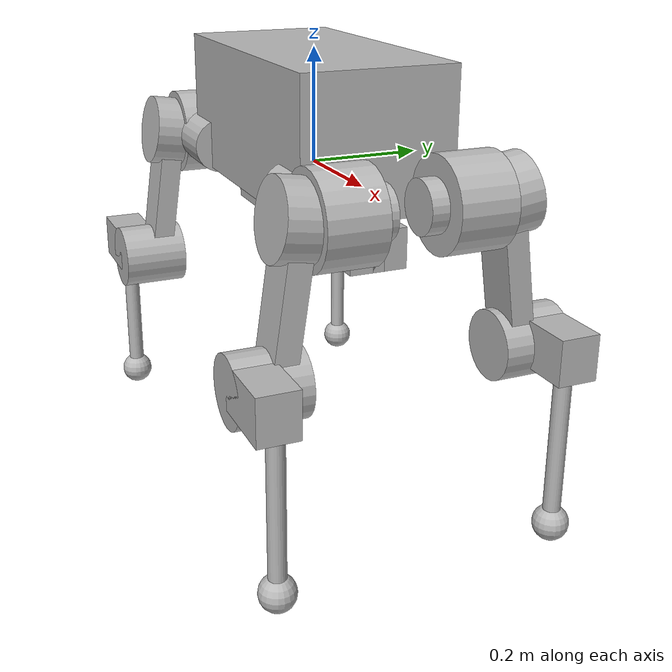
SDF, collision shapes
<sdf version='1.7'>
  <model name='anymal'>
    <link name='base'>
      <inertial>
        <pose>-0.001961 -0.001413 0.050207 0 -0 0</pose>
        <mass>16.7935</mass>
        <inertia>
          <ixx>0.217391</ixx>
          <ixy>-0.00132873</ixy>
          <ixz>-0.002282</ixz>
          <iyy>0.639433</iyy>
          <iyz>-0.00138078</iyz>
          <izz>0.624141</izz>
        </inertia>
      </inertial>
      <collision name='base_collision'>
        <pose>0 0 0.08 0 -0 0</pose>
        <geometry>
          <box>
            <size>0.531 0.27 0.24</size>
          </box>
        </geometry>
      </collision>
      <collision name='base_collision_1'>
        <pose>0.227 0.116 0 0 1.5708 0</pose>
        <geometry>
          <cylinder>
            <length>0.1</length>
            <radius>0.05</radius>
          </cylinder>
        </geometry>
      </collision>
      <collision name='base_collision_2'>
        <pose>0.227 -0.116 0 0 1.5708 0</pose>
        <geometry>
          <cylinder>
            <length>0.1</length>
            <radius>0.05</radius>
          </cylinder>
        </geometry>
      </collision>
      <collision name='base_collision_3'>
        <pose>-0.227 0.116 0 0 1.5708 0</pose>
        <geometry>
          <cylinder>
            <length>0.1</length>
            <radius>0.05</radius>
          </cylinder>
        </geometry>
      </collision>
      <collision name='base_collision_4'>
        <pose>-0.227 -0.116 0 0 1.5708 0</pose>
        <geometry>
          <cylinder>
            <length>0.1</length>
            <radius>0.05</radius>
          </cylinder>
        </geometry>
      </collision>
      <collision name='base_collision_5'>
        <pose>0.2155 0 -0.09 0 -0 0</pose>
        <geometry>
          <box>
            <size>0.1 0.1 0.07</size>
          </box>
        </geometry>
      </collision>
      <collision name='base_collision_6'>
        <pose>-0.2155 0 -0.09 0 -0 0</pose>
        <geometry>
          <box>
            <size>0.1 0.1 0.07</size>
          </box>
        </geometry>
      </collision>
      <collision name='base_collision_7'>
        <pose>0 0 -0.09 0 -0 0</pose>
        <geometry>
          <box>
            <size>0.531 0.02 0.07</size>
          </box>
        </geometry>
      </collision>
      <visual name='base_visual'>
        <pose>0 0 0 0 -0 0</pose>
        <geometry>
          <mesh>
            <scale>0.001 0.001 0.001</scale>
            <uri>model://anymal_b_simple_description/meshes/anymal_base.dae</uri>
          </mesh>
        </geometry>
      </visual>
    </link>
    <joint name='LF_HAA' type='revolute'>
      <pose relative_to='base'>0.277 0.116 0 0 -0 0</pose>
      <parent>base</parent>
      <child>LF_HIP</child>
      <axis>
        <xyz>1 0 0</xyz>
        <limit>
          <lower>-9.42</lower>
          <upper>9.42</upper>
          <effort>80</effort>
          <velocity>15</velocity>
        </limit>
        <dynamics>
          <damping>0</damping>
          <friction>0</friction>
          <spring_reference>0</spring_reference>
          <spring_stiffness>0</spring_stiffness>
        </dynamics>
      </axis>
    </joint>
    <link name='LF_HIP'>
      <pose relative_to='LF_HAA'>0 0 0 0 -0 0</pose>
      <inertial>
        <pose>0.064516 -0.003787 -0.000152 0 -0 0</pose>
        <mass>1.42462</mass>
        <inertia>
          <ixx>0.00243023</ixx>
          <ixy>-1.53024e-05</ixy>
          <ixz>-2.18191e-05</ixz>
          <iyy>0.00230257</iyy>
          <iyz>2.6473e-05</iyz>
          <izz>0.00198068</izz>
        </inertia>
      </inertial>
      <collision name='LF_HIP_collision'>
        <pose>0.0635 -0.009 0 1.5708 -0 0</pose>
        <geometry>
          <cylinder>
            <length>0.1</length>
            <radius>0.08</radius>
          </cylinder>
        </geometry>
      </collision>
      <collision name='LF_HIP_collision_1'>
        <pose>0.0635 -0.074 0 1.5708 -0 0</pose>
        <geometry>
          <cylinder>
            <length>0.03</length>
            <radius>0.045</radius>
          </cylinder>
        </geometry>
      </collision>
      <visual name='LF_HIP_visual'>
        <pose>0 0 0 0 -0 0</pose>
        <geometry>
          <mesh>
            <scale>0.001 0.001 0.001</scale>
            <uri>model://anymal_b_simple_description/meshes/anymal_hip_l.dae</uri>
          </mesh>
        </geometry>
      </visual>
    </link>
    <joint name='LF_HFE' type='revolute'>
      <pose relative_to='LF_HIP'>0.0635 0.041 0 0 -0 0</pose>
      <parent>LF_HIP</parent>
      <child>LF_THIGH</child>
      <axis>
        <xyz>0 1 0</xyz>
        <limit>
          <lower>-9.42</lower>
          <upper>9.42</upper>
          <effort>80</effort>
          <velocity>15</velocity>
        </limit>
        <dynamics>
          <damping>0</damping>
          <friction>0</friction>
          <spring_reference>0</spring_reference>
          <spring_stiffness>0</spring_stiffness>
        </dynamics>
      </axis>
    </joint>
    <link name='LF_THIGH'>
      <pose relative_to='LF_HFE'>0 0 0 0 -0 0</pose>
      <inertial>
        <pose>-0.003898 0.054227 -0.214583 0 -0 0</pose>
        <mass>1.63498</mass>
        <inertia>
          <ixx>0.0120368</ixx>
          <ixy>6.76207e-05</ixy>
          <ixz>0.000287806</ixz>
          <iyy>0.0120644</iyy>
          <iyz>-0.0014061</iyz>
          <izz>0.00249423</izz>
        </inertia>
      </inertial>
      <collision name='LF_THIGH_collision'>
        <pose>0 0.035 -0.125 0.145 -0 0</pose>
        <geometry>
          <box>
            <size>0.08 0.04 0.25</size>
          </box>
        </geometry>
      </collision>
      <collision name='LF_THIGH_collision_1'>
        <pose>0 0.069 -0.25 1.5708 -0 0</pose>
        <geometry>
          <cylinder>
            <length>0.12</length>
            <radius>0.06</radius>
          </cylinder>
        </geometry>
      </collision>
      <collision name='LF_THIGH_collision_2'>
        <pose>0 -0.005 0 1.7158 -0 0</pose>
        <geometry>
          <cylinder>
            <length>0.12</length>
            <radius>0.066</radius>
          </cylinder>
        </geometry>
      </collision>
      <visual name='LF_THIGH_visual'>
        <pose>0 0 0 0 -0 0</pose>
        <geometry>
          <mesh>
            <scale>0.001 0.001 0.001</scale>
            <uri>model://anymal_b_simple_description/meshes/anymal_thigh_l.dae</uri>
          </mesh>
        </geometry>
      </visual>
    </link>
    <joint name='LF_KFE' type='revolute'>
      <pose relative_to='LF_THIGH'>0 0.109 -0.25 0 -0 0</pose>
      <parent>LF_THIGH</parent>
      <child>LF_SHANK</child>
      <axis>
        <xyz>0 1 0</xyz>
        <limit>
          <lower>-9.42</lower>
          <upper>9.42</upper>
          <effort>80</effort>
          <velocity>15</velocity>
        </limit>
        <dynamics>
          <damping>0</damping>
          <friction>0</friction>
          <spring_reference>0</spring_reference>
          <spring_stiffness>0</spring_stiffness>
        </dynamics>
      </axis>
    </joint>
    <link name='LF_SHANK'>
      <pose relative_to='LF_KFE'>0 0 0 0 -0 0</pose>
      <inertial>
        <pose>0.058733 -0.010824 -0.098064 0 -0 0</pose>
        <mass>0.347375</mass>
        <inertia>
          <ixx>0.00685813</ixx>
          <ixy>3.2229e-05</ixy>
          <ixz>0.00142869</ixz>
          <iyy>0.00770431</iyy>
          <iyz>-0.000316237</iyz>
          <izz>0.00101942</izz>
        </inertia>
      </inertial>
      <collision name='LF_SHANK_collision'>
        <pose>0.065 -0.015 0.01 0 1.5708 0</pose>
        <geometry>
          <box>
            <size>0.08 0.07 0.13</size>
          </box>
        </geometry>
      </collision>
      <collision name='LF_SHANK_fixed_joint_lump__LF_ADAPTER_collision_1'>
        <pose>0.1 -0.02 -0.160625 0 -0 0</pose>
        <geometry>
          <cylinder>
            <length>0.32125</length>
            <radius>0.015</radius>
          </cylinder>
        </geometry>
      </collision>
      <collision name='LF_SHANK_fixed_joint_lump__LF_FOOT_collision_2'>
        <pose>0.1 -0.02 -0.298 0 -0 0</pose>
        <geometry>
          <sphere>
            <radius>0.031</radius>
          </sphere>
        </geometry>
        <surface>
          <contact>
            <ode>
              <kp>1e+06</kp>
              <kd>100</kd>
            </ode>
          </contact>
          <friction>
            <ode>
              <mu>0.8</mu>
              <mu2>0.8</mu2>
            </ode>
          </friction>
        </surface>
      </collision>
      <visual name='LF_SHANK_visual'>
        <pose>0 0 0 0 -0 0</pose>
        <geometry>
          <mesh>
            <scale>0.001 0.001 0.001</scale>
            <uri>model://anymal_b_simple_description/meshes/anymal_shank_l.dae</uri>
          </mesh>
        </geometry>
      </visual>
      <visual name='LF_SHANK_fixed_joint_lump__LF_ADAPTER_visual_1'>
        <pose>0.1 -0.02 0.032 0 -0 0</pose>
        <geometry>
          <mesh>
            <scale>0.001 0.001 0.001</scale>
            <uri>model://anymal_b_simple_description/meshes/anymal_foot.dae</uri>
          </mesh>
        </geometry>
      </visual>
      <sensor name='LF_contact' type='contact'>
        <always_on>1</always_on>
        <contact>
          <collision>LF_SHANK_fixed_joint_lump__LF_FOOT_collision_2</collision>
          <topic>__default_topic__</topic>
        </contact>
        <plugin name='force_plugin' filename='libgazebo_ros_bumper.so'>
          <bumperTopicName>lf_force</bumperTopicName>
          <frameName>LF_SHANK</frameName>
        </plugin>
        <pose>0.1 -0.02 -0.32125 0 -0 0</pose>
      </sensor>
    </link>
    <joint name='LH_HAA' type='revolute'>
      <pose relative_to='base'>-0.277 0.116 0 0 -0 0</pose>
      <parent>base</parent>
      <child>LH_HIP</child>
      <axis>
        <xyz>1 0 0</xyz>
        <limit>
          <lower>-9.42</lower>
          <upper>9.42</upper>
          <effort>80</effort>
          <velocity>15</velocity>
        </limit>
        <dynamics>
          <damping>0</damping>
          <friction>0</friction>
          <spring_reference>0</spring_reference>
          <spring_stiffness>0</spring_stiffness>
        </dynamics>
      </axis>
    </joint>
    <link name='LH_HIP'>
      <pose relative_to='LH_HAA'>0 0 0 0 -0 0</pose>
      <inertial>
        <pose>-0.064516 -0.003787 -0.000152 0 -0 0</pose>
        <mass>1.42462</mass>
        <inertia>
          <ixx>0.00243023</ixx>
          <ixy>1.53024e-05</ixy>
          <ixz>2.18191e-05</ixz>
          <iyy>0.00230257</iyy>
          <iyz>2.6473e-05</iyz>
          <izz>0.00198068</izz>
        </inertia>
      </inertial>
      <collision name='LH_HIP_collision'>
        <pose>-0.0635 -0.009 0 -1.5708 0 0</pose>
        <geometry>
          <cylinder>
            <length>0.1</length>
            <radius>0.08</radius>
          </cylinder>
        </geometry>
      </collision>
      <collision name='LH_HIP_collision_1'>
        <pose>-0.0635 -0.074 0 -1.5708 0 0</pose>
        <geometry>
          <cylinder>
            <length>0.03</length>
            <radius>0.045</radius>
          </cylinder>
        </geometry>
      </collision>
      <visual name='LH_HIP_visual'>
        <pose>0 0 0 0 -0 3.14159</pose>
        <geometry>
          <mesh>
            <scale>0.001 0.001 0.001</scale>
            <uri>model://anymal_b_simple_description/meshes/anymal_hip_r.dae</uri>
          </mesh>
        </geometry>
      </visual>
    </link>
    <joint name='LH_HFE' type='revolute'>
      <pose relative_to='LH_HIP'>-0.0635 0.041 0 0 -0 0</pose>
      <parent>LH_HIP</parent>
      <child>LH_THIGH</child>
      <axis>
        <xyz>0 1 0</xyz>
        <limit>
          <lower>-9.42</lower>
          <upper>9.42</upper>
          <effort>80</effort>
          <velocity>15</velocity>
        </limit>
        <dynamics>
          <damping>0</damping>
          <friction>0</friction>
          <spring_reference>0</spring_reference>
          <spring_stiffness>0</spring_stiffness>
        </dynamics>
      </axis>
    </joint>
    <link name='LH_THIGH'>
      <pose relative_to='LH_HFE'>0 0 0 0 -0 0</pose>
      <inertial>
        <pose>0.003898 0.054227 -0.214583 0 -0 0</pose>
        <mass>1.63498</mass>
        <inertia>
          <ixx>0.0120368</ixx>
          <ixy>-6.76207e-05</ixy>
          <ixz>-0.000287806</ixz>
          <iyy>0.0120644</iyy>
          <iyz>-0.0014061</iyz>
          <izz>0.00249423</izz>
        </inertia>
      </inertial>
      <collision name='LH_THIGH_collision'>
        <pose>0 0.035 -0.125 0.145 -0 0</pose>
        <geometry>
          <box>
            <size>0.08 0.04 0.25</size>
          </box>
        </geometry>
      </collision>
      <collision name='LH_THIGH_collision_1'>
        <pose>0 0.069 -0.25 1.5708 -0 0</pose>
        <geometry>
          <cylinder>
            <length>0.12</length>
            <radius>0.06</radius>
          </cylinder>
        </geometry>
      </collision>
      <collision name='LH_THIGH_collision_2'>
        <pose>0 -0.005 0 1.7158 -0 0</pose>
        <geometry>
          <cylinder>
            <length>0.12</length>
            <radius>0.066</radius>
          </cylinder>
        </geometry>
      </collision>
      <visual name='LH_THIGH_visual'>
        <pose>0 0 0 0 -0 3.14159</pose>
        <geometry>
          <mesh>
            <scale>0.001 0.001 0.001</scale>
            <uri>model://anymal_b_simple_description/meshes/anymal_thigh_r.dae</uri>
          </mesh>
        </geometry>
      </visual>
    </link>
    <joint name='LH_KFE' type='revolute'>
      <pose relative_to='LH_THIGH'>0 0.109 -0.25 0 -0 0</pose>
      <parent>LH_THIGH</parent>
      <child>LH_SHANK</child>
      <axis>
        <xyz>0 1 0</xyz>
        <limit>
          <lower>-9.42</lower>
          <upper>9.42</upper>
          <effort>80</effort>
          <velocity>15</velocity>
        </limit>
        <dynamics>
          <damping>0</damping>
          <friction>0</friction>
          <spring_reference>0</spring_reference>
          <spring_stiffness>0</spring_stiffness>
        </dynamics>
      </axis>
    </joint>
    <link name='LH_SHANK'>
      <pose relative_to='LH_KFE'>0 0 0 0 -0 0</pose>
      <inertial>
        <pose>-0.058733 -0.010824 -0.098064 0 -0 0</pose>
        <mass>0.347375</mass>
        <inertia>
          <ixx>0.00685813</ixx>
          <ixy>-3.2229e-05</ixy>
          <ixz>-0.00142869</ixz>
          <iyy>0.00770431</iyy>
          <iyz>-0.000316237</iyz>
          <izz>0.00101942</izz>
        </inertia>
      </inertial>
      <collision name='LH_SHANK_collision'>
        <pose>-0.065 -0.015 0.01 0 1.5708 0</pose>
        <geometry>
          <box>
            <size>0.08 0.07 0.13</size>
          </box>
        </geometry>
      </collision>
      <collision name='LH_SHANK_fixed_joint_lump__LH_ADAPTER_collision_1'>
        <pose>-0.1 -0.02 -0.160625 0 -0 0</pose>
        <geometry>
          <cylinder>
            <length>0.32125</length>
            <radius>0.015</radius>
          </cylinder>
        </geometry>
      </collision>
      <collision name='LH_SHANK_fixed_joint_lump__LH_FOOT_collision_2'>
        <pose>-0.1 -0.02 -0.298 0 -0 0</pose>
        <geometry>
          <sphere>
            <radius>0.031</radius>
          </sphere>
        </geometry>
        <surface>
          <contact>
            <ode>
              <kp>1e+06</kp>
              <kd>100</kd>
            </ode>
          </contact>
          <friction>
            <ode>
              <mu>0.8</mu>
              <mu2>0.8</mu2>
            </ode>
          </friction>
        </surface>
      </collision>
      <visual name='LH_SHANK_visual'>
        <pose>0 0 0 0 -0 3.14159</pose>
        <geometry>
          <mesh>
            <scale>0.001 0.001 0.001</scale>
            <uri>model://anymal_b_simple_description/meshes/anymal_shank_r.dae</uri>
          </mesh>
        </geometry>
      </visual>
      <visual name='LH_SHANK_fixed_joint_lump__LH_ADAPTER_visual_1'>
        <pose>-0.1 -0.02 0.032 0 -0 3.14159</pose>
        <geometry>
          <mesh>
            <scale>0.001 0.001 0.001</scale>
            <uri>model://anymal_b_simple_description/meshes/anymal_foot.dae</uri>
          </mesh>
        </geometry>
      </visual>
    </link>
    <joint name='RF_HAA' type='revolute'>
      <pose relative_to='base'>0.277 -0.116 0 0 -0 0</pose>
      <parent>base</parent>
      <child>RF_HIP</child>
      <axis>
        <xyz>1 0 0</xyz>
        <limit>
          <lower>-9.42</lower>
          <upper>9.42</upper>
          <effort>80</effort>
          <velocity>15</velocity>
        </limit>
        <dynamics>
          <damping>0</damping>
          <friction>0</friction>
          <spring_reference>0</spring_reference>
          <spring_stiffness>0</spring_stiffness>
        </dynamics>
      </axis>
    </joint>
    <link name='RF_HIP'>
      <pose relative_to='RF_HAA'>0 0 0 0 -0 0</pose>
      <inertial>
        <pose>0.064516 0.003787 -0.000152 0 -0 0</pose>
        <mass>1.42462</mass>
        <inertia>
          <ixx>0.00243023</ixx>
          <ixy>1.53024e-05</ixy>
          <ixz>-2.18191e-05</ixz>
          <iyy>0.00230257</iyy>
          <iyz>-2.6473e-05</iyz>
          <izz>0.00198068</izz>
        </inertia>
      </inertial>
      <collision name='RF_HIP_collision'>
        <pose>0.0635 0.009 0 1.5708 -0 0</pose>
        <geometry>
          <cylinder>
            <length>0.1</length>
            <radius>0.08</radius>
          </cylinder>
        </geometry>
      </collision>
      <collision name='RF_HIP_collision_1'>
        <pose>0.0635 0.074 0 1.5708 -0 0</pose>
        <geometry>
          <cylinder>
            <length>0.03</length>
            <radius>0.045</radius>
          </cylinder>
        </geometry>
      </collision>
      <visual name='RF_HIP_visual'>
        <pose>0 0 0 0 -0 0</pose>
        <geometry>
          <mesh>
            <scale>0.001 0.001 0.001</scale>
            <uri>model://anymal_b_simple_description/meshes/anymal_hip_r.dae</uri>
          </mesh>
        </geometry>
      </visual>
    </link>
    <joint name='RF_HFE' type='revolute'>
      <pose relative_to='RF_HIP'>0.0635 -0.041 0 0 -0 0</pose>
      <parent>RF_HIP</parent>
      <child>RF_THIGH</child>
      <axis>
        <xyz>0 1 0</xyz>
        <limit>
          <lower>-9.42</lower>
          <upper>9.42</upper>
          <effort>80</effort>
          <velocity>15</velocity>
        </limit>
        <dynamics>
          <damping>0</damping>
          <friction>0</friction>
          <spring_reference>0</spring_reference>
          <spring_stiffness>0</spring_stiffness>
        </dynamics>
      </axis>
    </joint>
    <link name='RF_THIGH'>
      <pose relative_to='RF_HFE'>0 0 0 0 -0 0</pose>
      <inertial>
        <pose>-0.003898 -0.054227 -0.214583 0 -0 0</pose>
        <mass>1.63498</mass>
        <inertia>
          <ixx>0.0120368</ixx>
          <ixy>-6.76207e-05</ixy>
          <ixz>0.000287806</ixz>
          <iyy>0.0120644</iyy>
          <iyz>0.0014061</iyz>
          <izz>0.00249423</izz>
        </inertia>
      </inertial>
      <collision name='RF_THIGH_collision'>
        <pose>0 -0.035 -0.125 -0.145 0 0</pose>
        <geometry>
          <box>
            <size>0.08 0.04 0.25</size>
          </box>
        </geometry>
      </collision>
      <collision name='RF_THIGH_collision_1'>
        <pose>0 -0.069 -0.25 1.5708 -0 0</pose>
        <geometry>
          <cylinder>
            <length>0.12</length>
            <radius>0.06</radius>
          </cylinder>
        </geometry>
      </collision>
      <collision name='RF_THIGH_collision_2'>
        <pose>0 0.005 0 -1.7158 0 0</pose>
        <geometry>
          <cylinder>
            <length>0.12</length>
            <radius>0.066</radius>
          </cylinder>
        </geometry>
      </collision>
      <visual name='RF_THIGH_visual'>
        <pose>0 0 0 0 -0 0</pose>
        <geometry>
          <mesh>
            <scale>0.001 0.001 0.001</scale>
            <uri>model://anymal_b_simple_description/meshes/anymal_thigh_r.dae</uri>
          </mesh>
        </geometry>
      </visual>
    </link>
    <joint name='RF_KFE' type='revolute'>
      <pose relative_to='RF_THIGH'>0 -0.109 -0.25 0 -0 0</pose>
      <parent>RF_THIGH</parent>
      <child>RF_SHANK</child>
      <axis>
        <xyz>0 1 0</xyz>
        <limit>
          <lower>-9.42</lower>
          <upper>9.42</upper>
          <effort>80</effort>
          <velocity>15</velocity>
        </limit>
        <dynamics>
          <damping>0</damping>
          <friction>0</friction>
          <spring_reference>0</spring_reference>
          <spring_stiffness>0</spring_stiffness>
        </dynamics>
      </axis>
    </joint>
    <link name='RF_SHANK'>
      <pose relative_to='RF_KFE'>0 0 0 0 -0 0</pose>
      <inertial>
        <pose>0.058733 0.010824 -0.098064 0 -0 0</pose>
        <mass>0.347375</mass>
        <inertia>
          <ixx>0.00685813</ixx>
          <ixy>-3.2229e-05</ixy>
          <ixz>0.00142869</ixz>
          <iyy>0.00770431</iyy>
          <iyz>0.000316237</iyz>
          <izz>0.00101942</izz>
        </inertia>
      </inertial>
      <collision name='RF_SHANK_collision'>
        <pose>0.065 0.015 0.01 0 1.5708 0</pose>
        <geometry>
          <box>
            <size>0.08 0.07 0.13</size>
          </box>
        </geometry>
      </collision>
      <collision name='RF_SHANK_fixed_joint_lump__RF_ADAPTER_collision_1'>
        <pose>0.1 0.02 -0.160625 0 -0 0</pose>
        <geometry>
          <cylinder>
            <length>0.32125</length>
            <radius>0.015</radius>
          </cylinder>
        </geometry>
      </collision>
      <collision name='RF_SHANK_fixed_joint_lump__RF_FOOT_collision_2'>
        <pose>0.1 0.02 -0.298 0 -0 0</pose>
        <geometry>
          <sphere>
            <radius>0.031</radius>
          </sphere>
        </geometry>
        <surface>
          <contact>
            <ode>
              <kp>1e+06</kp>
              <kd>100</kd>
            </ode>
          </contact>
          <friction>
            <ode>
              <mu>0.8</mu>
              <mu2>0.8</mu2>
            </ode>
          </friction>
        </surface>
      </collision>
      <visual name='RF_SHANK_visual'>
        <pose>0 0 0 0 -0 0</pose>
        <geometry>
          <mesh>
            <scale>0.001 0.001 0.001</scale>
            <uri>model://anymal_b_simple_description/meshes/anymal_shank_r.dae</uri>
          </mesh>
        </geometry>
      </visual>
      <visual name='RF_SHANK_fixed_joint_lump__RF_ADAPTER_visual_1'>
        <pose>0.1 0.02 0.032 0 -0 0</pose>
        <geometry>
          <mesh>
            <scale>0.001 0.001 0.001</scale>
            <uri>model://anymal_b_simple_description/meshes/anymal_foot.dae</uri>
          </mesh>
        </geometry>
      </visual>
    </link>
    <joint name='RH_HAA' type='revolute'>
      <pose relative_to='base'>-0.277 -0.116 0 0 -0 0</pose>
      <parent>base</parent>
      <child>RH_HIP</child>
      <axis>
        <xyz>1 0 0</xyz>
        <limit>
          <lower>-9.42</lower>
          <upper>9.42</upper>
          <effort>80</effort>
          <velocity>15</velocity>
        </limit>
        <dynamics>
          <damping>0</damping>
          <friction>0</friction>
          <spring_reference>0</spring_reference>
          <spring_stiffness>0</spring_stiffness>
        </dynamics>
      </axis>
    </joint>
    <link name='RH_HIP'>
      <pose relative_to='RH_HAA'>0 0 0 0 -0 0</pose>
      <inertial>
        <pose>-0.064516 0.003787 -0.000152 0 -0 0</pose>
        <mass>1.42462</mass>
        <inertia>
          <ixx>0.00243023</ixx>
          <ixy>-1.53024e-05</ixy>
          <ixz>2.18191e-05</ixz>
          <iyy>0.00230257</iyy>
          <iyz>-2.6473e-05</iyz>
          <izz>0.00198068</izz>
        </inertia>
      </inertial>
      <collision name='RH_HIP_collision'>
        <pose>-0.0635 0.009 0 -1.5708 0 0</pose>
        <geometry>
          <cylinder>
            <length>0.1</length>
            <radius>0.08</radius>
          </cylinder>
        </geometry>
      </collision>
      <collision name='RH_HIP_collision_1'>
        <pose>-0.0635 0.074 0 -1.5708 0 0</pose>
        <geometry>
          <cylinder>
            <length>0.03</length>
            <radius>0.045</radius>
          </cylinder>
        </geometry>
      </collision>
      <visual name='RH_HIP_visual'>
        <pose>0 0 0 0 -0 3.14159</pose>
        <geometry>
          <mesh>
            <scale>0.001 0.001 0.001</scale>
            <uri>model://anymal_b_simple_description/meshes/anymal_hip_l.dae</uri>
          </mesh>
        </geometry>
      </visual>
    </link>
    <joint name='RH_HFE' type='revolute'>
      <pose relative_to='RH_HIP'>-0.0635 -0.041 0 0 -0 0</pose>
      <parent>RH_HIP</parent>
      <child>RH_THIGH</child>
      <axis>
        <xyz>0 1 0</xyz>
        <limit>
          <lower>-9.42</lower>
          <upper>9.42</upper>
          <effort>80</effort>
          <velocity>15</velocity>
        </limit>
        <dynamics>
          <damping>0</damping>
          <friction>0</friction>
          <spring_reference>0</spring_reference>
          <spring_stiffness>0</spring_stiffness>
        </dynamics>
      </axis>
    </joint>
    <link name='RH_THIGH'>
      <pose relative_to='RH_HFE'>0 0 0 0 -0 0</pose>
      <inertial>
        <pose>0.003898 -0.054227 -0.214583 0 -0 0</pose>
        <mass>1.63498</mass>
        <inertia>
          <ixx>0.0120368</ixx>
          <ixy>6.76207e-05</ixy>
          <ixz>-0.000287806</ixz>
          <iyy>0.0120644</iyy>
          <iyz>0.0014061</iyz>
          <izz>0.00249423</izz>
        </inertia>
      </inertial>
      <collision name='RH_THIGH_collision'>
        <pose>0 -0.035 -0.125 -0.145 0 0</pose>
        <geometry>
          <box>
            <size>0.08 0.04 0.25</size>
          </box>
        </geometry>
      </collision>
      <collision name='RH_THIGH_collision_1'>
        <pose>0 -0.069 -0.25 1.5708 -0 0</pose>
        <geometry>
          <cylinder>
            <length>0.12</length>
            <radius>0.06</radius>
          </cylinder>
        </geometry>
      </collision>
      <collision name='RH_THIGH_collision_2'>
        <pose>0 0.005 0 -1.7158 0 0</pose>
        <geometry>
          <cylinder>
            <length>0.12</length>
            <radius>0.066</radius>
          </cylinder>
        </geometry>
      </collision>
      <visual name='RH_THIGH_visual'>
        <pose>0 0 0 0 -0 3.14159</pose>
        <geometry>
          <mesh>
            <scale>0.001 0.001 0.001</scale>
            <uri>model://anymal_b_simple_description/meshes/anymal_thigh_l.dae</uri>
          </mesh>
        </geometry>
      </visual>
    </link>
    <joint name='RH_KFE' type='revolute'>
      <pose relative_to='RH_THIGH'>0 -0.109 -0.25 0 -0 0</pose>
      <parent>RH_THIGH</parent>
      <child>RH_SHANK</child>
      <axis>
        <xyz>0 1 0</xyz>
        <limit>
          <lower>-9.42</lower>
          <upper>9.42</upper>
          <effort>80</effort>
          <velocity>15</velocity>
        </limit>
        <dynamics>
          <damping>0</damping>
          <friction>0</friction>
          <spring_reference>0</spring_reference>
          <spring_stiffness>0</spring_stiffness>
        </dynamics>
      </axis>
    </joint>
    <link name='RH_SHANK'>
      <pose relative_to='RH_KFE'>0 0 0 0 -0 0</pose>
      <inertial>
        <pose>-0.058733 0.010824 -0.098064 0 -0 0</pose>
        <mass>0.347375</mass>
        <inertia>
          <ixx>0.00685813</ixx>
          <ixy>3.2229e-05</ixy>
          <ixz>-0.00142869</ixz>
          <iyy>0.00770431</iyy>
          <iyz>0.000316237</iyz>
          <izz>0.00101942</izz>
        </inertia>
      </inertial>
      <collision name='RH_SHANK_collision'>
        <pose>-0.065 0.015 0.01 0 1.5708 0</pose>
        <geometry>
          <box>
            <size>0.08 0.07 0.13</size>
          </box>
        </geometry>
      </collision>
      <collision name='RH_SHANK_fixed_joint_lump__RH_ADAPTER_collision_1'>
        <pose>-0.1 0.02 -0.160625 0 -0 0</pose>
        <geometry>
          <cylinder>
            <length>0.32125</length>
            <radius>0.015</radius>
          </cylinder>
        </geometry>
      </collision>
      <collision name='RH_SHANK_fixed_joint_lump__RH_FOOT_collision_2'>
        <pose>-0.1 0.02 -0.298 0 -0 0</pose>
        <geometry>
          <sphere>
            <radius>0.031</radius>
          </sphere>
        </geometry>
        <surface>
          <contact>
            <ode>
              <kp>1e+06</kp>
              <kd>100</kd>
            </ode>
          </contact>
          <friction>
            <ode>
              <mu>0.8</mu>
              <mu2>0.8</mu2>
            </ode>
          </friction>
        </surface>
      </collision>
      <visual name='RH_SHANK_visual'>
        <pose>0 0 0 0 -0 3.14159</pose>
        <geometry>
          <mesh>
            <scale>0.001 0.001 0.001</scale>
            <uri>model://anymal_b_simple_description/meshes/anymal_shank_l.dae</uri>
          </mesh>
        </geometry>
      </visual>
      <visual name='RH_SHANK_fixed_joint_lump__RH_ADAPTER_visual_1'>
        <pose>-0.1 0.02 0.032 0 -0 3.14159</pose>
        <geometry>
          <mesh>
            <scale>0.001 0.001 0.001</scale>
            <uri>model://anymal_b_simple_description/meshes/anymal_foot.dae</uri>
          </mesh>
        </geometry>
      </visual>
    </link>
    <static>0</static>
    <plugin name='gazebo_ros_control' filename='libgazebo_ros_control.so'>
      <legacyModeNS>1</legacyModeNS>
    </plugin>
  </model>
</sdf>
